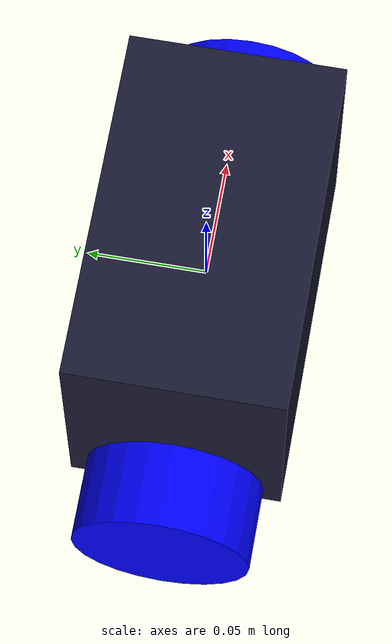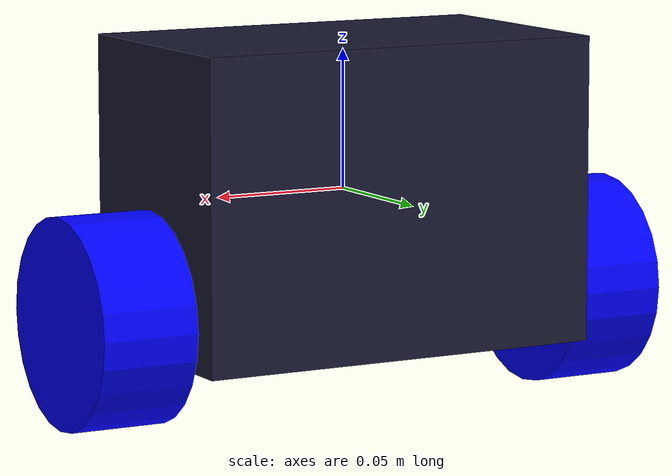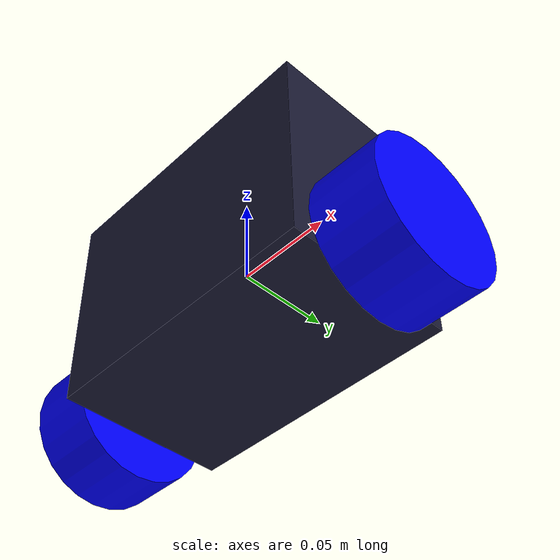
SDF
<?xml version="1.0"?>
<sdf version="1.8">
  <model name="Alfred">
    <!-- Links definition -->

    <!-- Body -->
    <link name="body">
      <visual name='visual'>
        <geometry>
          <box>
            <size>0.15 0.09 0.11</size>
          </box>
        </geometry>
        <material>
          <ambient>0.1 0.1 0.1 1</ambient>
          <diffuse>0.1 0.1 0.2 1</diffuse>
          <specular>0 0 0 0</specular>
        </material>
      </visual>
      <collision name='collision'>
        <geometry>
          <box>
            <size>0.15 0.09 0.11</size>
          </box>
        </geometry>
      </collision>
      <inertial>
        <mass>0.72</mass>
        <inertia>
          <ixx>0.001212</ixx>
          <ixy>0.0</ixy>
          <ixz>0.0</ixz>
          <iyy>0.001836</iyy>
          <iyz>0.0</iyz>
          <izz>0.0020759999999999997</izz>
        </inertia>
      </inertial>
      <!-- Imu sensor -->
      <sensor name="imu_sensor" type="imu">
        <pose relative_to='body'>0 0 0.05 0 0 0</pose>
        <always_on>1</always_on>
        <update_rate>100</update_rate>
        <visualize>true</visualize>
        <topic>imu</topic>
      </sensor>
      <!-- Proximity sensor -->
      <sensor name="ultrasonic" type="gpu_lidar">
        <pose relative_to='body'>0 0.045 0.055 0 0 3.1416</pose>
        <always_on>1</always_on>
        <update_rate>1</update_rate>
        <visualize>true</visualize>
        <topic>ultrasonic</topic>
        <lidar>
          <scan>
              <horizontal>
                <samples>1</samples>
                <resolution>1</resolution>
                <min_angle>-0.075</min_angle>
                <max_angle>0.075</max_angle>
              </horizontal>
              <vertical>
                <samples>1</samples>
                <resolution>1</resolution>
                <min_angle>-0.075</min_angle>
                <max_angle>0.075</max_angle>
              </vertical>
          </scan>
          <range>
            <min>0.02</min>
            <max>4</max>
            <resolution>0.005</resolution>
          </range>
          <noise>
            <type>gaussian</type>
            <mean>0.0</mean>
            <stddev>0.01</stddev>
          </noise>
        </lidar>
      </sensor>
    </link>

    <!-- Right wheel -->
    <link name="right_wheel">
      <pose relative_to="body">-0.09375 0 -0.04 0 1.5707963267948966 0</pose>
      <visual name='visual'>
        <geometry>
          <cylinder>
            <length>0.035</length>
            <radius>0.0375</radius>
          </cylinder>
        </geometry>
        <material>
          <ambient>0.0 0.0 1.0 1</ambient>
          <diffuse>0.0 0.0 1.0 1</diffuse>
          <specular>0.0 0.0 1.0 1</specular>
        </material>
      </visual>
      <collision name='collision'>
        <geometry>
          <cylinder>
            <length>0.035</length>
            <radius>0.0375</radius>
          </cylinder>
        </geometry>
      </collision>
      <inertial>
        <mass>0.05</mass>
        <inertia>
          <ixx>2.2682291666666666e-05</ixx>
          <ixy>0.0</ixy>
          <ixz>0.0</ixz>
          <iyy>2.2682291666666666e-05</iyy>
          <iyz>0.0</iyz>
          <izz>3.515625e-05</izz>
        </inertia>
      </inertial>
    </link>

    <!-- Left wheel -->
    <link name="left_wheel">
      <pose relative_to="body">0.09375 0 -0.04 0 1.5707963267948966 0</pose>
      <visual name='visual'>
        <geometry>
          <cylinder>
            <length>0.035</length>
            <radius>0.0375</radius>
          </cylinder>
        </geometry>
        <material>
          <ambient>0.0 0.0 1.0 1</ambient>
          <diffuse>0.0 0.0 1.0 1</diffuse>
          <specular>0.0 0.0 1.0 1</specular>
        </material>
      </visual>
      <collision name='collision'>
        <geometry>
          <cylinder>
            <length>0.035</length>
            <radius>0.0375</radius>
          </cylinder>
        </geometry>
      </collision>
      <inertial>
        <mass>0.05</mass>
        <inertia>
          <ixx>2.2682291666666666e-05</ixx>
          <ixy>0.0</ixy>
          <ixz>0.0</ixz>
          <iyy>2.2682291666666666e-05</iyy>
          <iyz>0.0</iyz>
          <izz>3.515625e-05</izz>
        </inertia>
      </inertial>
    </link>

    <!-- Joints definition -->
    <joint name="body_to_right_wheel" type="revolute">
      <pose relative_to='right_wheel'/>
      <parent>body</parent>
      <child>right_wheel</child>
      <axis>
        <xyz expressed_in='body'>1 0 0</xyz>
        <limit>
          <lower>-1.79769e+308</lower>    <!--negative infinity-->
          <upper>1.79769e+308</upper>     <!--positive infinity-->
        </limit>
      </axis>
    </joint>
    <joint name="body_to_left_wheel" type="revolute">
      <pose relative_to='left_wheel'/>
      <parent>body</parent>
      <child>left_wheel</child>
      <axis>
        <xyz expressed_in='body'>1 0 0</xyz>
        <limit>
          <lower>-1.79769e+308</lower>    <!--negative infinity-->
          <upper>1.79769e+308</upper>     <!--positive infinity-->
        </limit>
      </axis>
    </joint>

    <!-- Diff drive plugin -->
    <plugin filename="gz-sim-diff-drive-system" name="gz::sim::systems::DiffDrive">
      <left_joint>body_to_left_wheel</left_joint>
      <right_joint>body_to_right_wheel</right_joint>
      <wheel_separation>0.185</wheel_separation>
      <wheel_radius>0.0375</wheel_radius>
      <odom_publish_frequency>100</odom_publish_frequency>
      <topic>cmd_vel</topic>
      <odom_topic>odometry</odom_topic>
    </plugin>
  </model>
</sdf>
